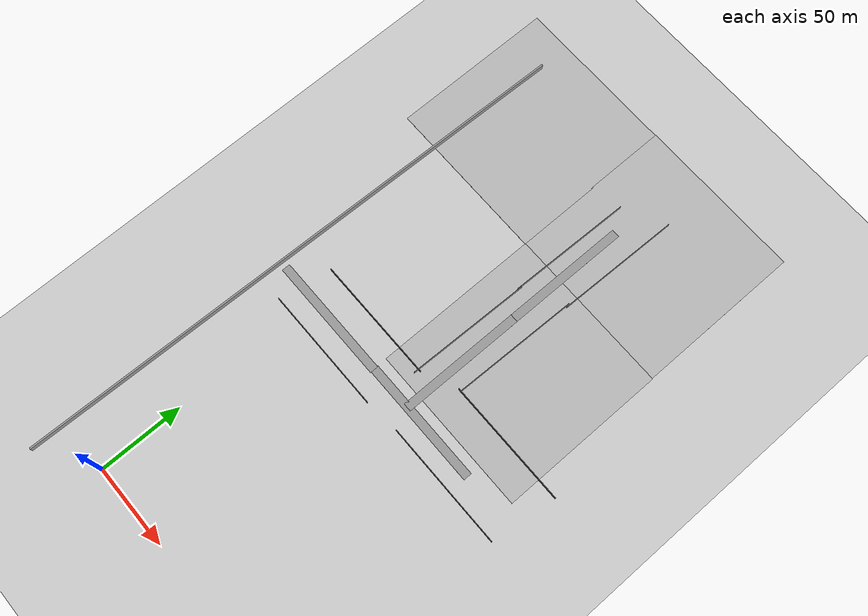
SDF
<sdf version="1.6">
 <world name="default">
  <model name="ground1_4">
   <static>1</static>
   <link name="link">
    <collision name="collision">
     <geometry><plane><normal>0 0 1</normal><size>100 100</size></plane></geometry>
     <surface><friction><ode><mu>100</mu><mu2>50</mu2></ode></friction></surface>
    </collision>
    <visual name="visual">
     <cast_shadows>0</cast_shadows>
     <geometry><plane><normal>0 0 1</normal><size>100 100</size></plane></geometry>
     <material>
      <script>
       <uri>model://ground1/materials/scripts</uri>
       <uri>model://ground1/materials/textures/</uri>
       <name>ground1/Image</name>
      </script>
     </material>
    </visual>
   </link>
   <pose>-0.010142 199.089 0 0 -0 0</pose>
  </model>
  <model name="ground1_5">
   <static>1</static>
   <link name="link">
    <collision name="collision">
     <geometry><plane><normal>0 0 1</normal><size>100 100</size></plane></geometry>
     <surface><friction><ode><mu>100</mu><mu2>50</mu2></ode></friction></surface>
    </collision>
    <visual name="visual">
     <cast_shadows>0</cast_shadows>
     <geometry><plane><normal>0 0 1</normal><size>100 100</size></plane></geometry>
     <material>
      <script>
       <uri>model://ground1/materials/scripts</uri>
       <uri>model://ground1/materials/textures/</uri>
       <name>ground1/Image</name>
      </script>
     </material>
    </visual>
   </link>
   <pose>0.088534 298.479 0 0 -0 0</pose>
  </model>
  <model name="ground1_7">
   <static>1</static>
   <link name="link">
    <collision name="collision">
     <geometry><plane><normal>0 0 1</normal><size>100 100</size></plane></geometry>
     <surface><friction><ode><mu>100</mu><mu2>50</mu2></ode></friction></surface>
    </collision>
    <visual name="visual">
     <cast_shadows>0</cast_shadows>
     <geometry><plane><normal>0 0 1</normal><size>100 100</size></plane></geometry>
     <material>
      <script>
       <uri>model://ground1/materials/scripts</uri>
       <uri>model://ground1/materials/textures/</uri>
       <name>ground1/Image</name>
      </script>
     </material>
    </visual>
   </link>
   <pose>99.9085 198.843 0 0 -0 0</pose>
  </model>
  <model name="ground1_8">
   <static>1</static>
   <link name="link">
    <collision name="collision">
     <geometry><plane><normal>0 0 1</normal><size>100 100</size></plane></geometry>
     <surface><friction><ode><mu>100</mu><mu2>50</mu2></ode></friction></surface>
    </collision>
    <visual name="visual">
     <cast_shadows>0</cast_shadows>
     <geometry><plane><normal>0 0 1</normal><size>100 100</size></plane></geometry>
     <material>
      <script>
       <uri>model://ground1/materials/scripts</uri>
       <uri>model://ground1/materials/textures/</uri>
       <name>ground1/Image</name>
      </script>
     </material>
    </visual>
   </link>
   <pose>99.5435 298.797 0 0 -0 0</pose>
  </model>
  <model name="grey_wall1_2_clone">
   <static>1</static>
   <link name="link">
    <pose>0 0 1.4 0 -0 0</pose>
    <collision name="collision"><geometry><box><size>350 1 5</size></box></geometry></collision>
    <visual name="visual">
     <cast_shadows>0</cast_shadows>
     <geometry><box><size>350 1 5</size></box></geometry>
     <material>
      <script>
       <uri>model://grey_wall/materials/scripts</uri>
       <uri>model://grey_wall/materials/textures</uri>
       <name>vrc/grey_wall</name>
      </script>
     </material>
    </visual>
   </link>
   <pose>-27.8858 153.338 0 0 0 -1.59375</pose>
  </model>
  <model name="grey_wall2">
   <static>1</static>
   <link name="link">
    <pose>0 0 1.4 0 -0 0</pose>
    <collision name="collision"><geometry><box><size>75 5 0.01</size></box></geometry></collision>
    <visual name="visual">
     <cast_shadows>0</cast_shadows>
     <geometry><box><size>75 5 0.01</size></box></geometry>
     <material>
      <script>
       <uri>model://grey_wall/materials/scripts</uri>
       <uri>model://grey_wall/materials/textures</uri>
       <name>vrc/grey_wall</name>
      </script>
     </material>
    </visual>
   </link>
   <pose>87.6591 140.495 0 0 -0 0</pose>
  </model>
  <model name="grey_wall2_1">
   <static>1</static>
   <link name="link">
    <pose>0 0 1.4 0 -0 0</pose>
    <collision name="collision"><geometry><box><size>75 5 0.01</size></box></geometry></collision>
    <visual name="visual">
     <cast_shadows>0</cast_shadows>
     <geometry><box><size>75 5 0.01</size></box></geometry>
     <material>
      <script>
       <uri>model://grey_wall/materials/scripts</uri>
       <uri>model://grey_wall/materials/textures</uri>
       <name>vrc/grey_wall</name>
      </script>
     </material>
    </visual>
   </link>
   <pose>13.2937 140.105 0 0 -0 0</pose>
  </model>
  <model name="grey_wall2_3">
   <static>1</static>
   <link name="link">
    <pose>0 0 1.4 0 -0 0</pose>
    <collision name="collision"><geometry><box><size>75 5 0.01</size></box></geometry></collision>
    <visual name="visual">
     <cast_shadows>0</cast_shadows>
     <geometry><box><size>75 5 0.01</size></box></geometry>
     <material>
      <script>
       <uri>model://grey_wall/materials/scripts</uri>
       <uri>model://grey_wall/materials/textures</uri>
       <name>vrc/grey_wall</name>
      </script>
     </material>
    </visual>
   </link>
   <pose>77.6551 177.706 0 0 0 -1.57442</pose>
  </model>
  <model name="grey_wall2_3_clone">
   <static>1</static>
   <link name="link">
    <pose>0 0 1.4 0 -0 0</pose>
    <collision name="collision"><geometry><box><size>75 5 0.01</size></box></geometry></collision>
    <visual name="visual">
     <cast_shadows>0</cast_shadows>
     <geometry><box><size>75 5 0.01</size></box></geometry>
     <material>
      <script>
       <uri>model://grey_wall/materials/scripts</uri>
       <uri>model://grey_wall/materials/textures</uri>
       <name>vrc/grey_wall</name>
      </script>
     </material>
    </visual>
   </link>
   <pose>77.8745 252.613 0 0 0 -1.57442</pose>
  </model>
  <model name="grey_wall_clone_clone_0_clone_8">
   <static>1</static>
   <link name="link">
    <pose>0 0 1.4 0 -0 0</pose>
    <collision name="collision"><geometry><box><size>75 0.2 2.8</size></box></geometry></collision>
    <visual name="visual">
     <cast_shadows>0</cast_shadows>
     <geometry><box><size>75 0.2 2.8</size></box></geometry>
     <material>
      <script>
       <uri>model://grey_wall/materials/scripts</uri>
       <uri>model://grey_wall/materials/textures</uri>
       <name>vrc/grey_wall</name>
      </script>
     </material>
    </visual>
   </link>
   <pose>90.1468 205.479 0 0 0 -1.59331</pose>
  </model>
  <model name="grey_wall_clone_clone_0_clone_11">
   <static>1</static>
   <link name="link">
    <pose>0 0 1.4 0 -0 0</pose>
    <collision name="collision"><geometry><box><size>75 0.2 2.8</size></box></geometry></collision>
    <visual name="visual">
     <cast_shadows>0</cast_shadows>
     <geometry><box><size>75 0.2 2.8</size></box></geometry>
     <material>
      <script>
       <uri>model://grey_wall/materials/scripts</uri>
       <uri>model://grey_wall/materials/textures</uri>
       <name>vrc/grey_wall</name>
      </script>
     </material>
    </visual>
   </link>
   <pose>66.5741 192.711 0 0 0 -1.59331</pose>
  </model>
  <model name="grey_wall_clone_clone_0_clone_12">
   <static>1</static>
   <link name="link">
    <pose>0 0 1.4 0 -0 0</pose>
    <collision name="collision"><geometry><box><size>75 0.2 2.8</size></box></geometry></collision>
    <visual name="visual">
     <cast_shadows>0</cast_shadows>
     <geometry><box><size>75 0.2 2.8</size></box></geometry>
     <material>
      <script>
       <uri>model://grey_wall/materials/scripts</uri>
       <uri>model://grey_wall/materials/textures</uri>
       <name>vrc/grey_wall</name>
      </script>
     </material>
    </visual>
   </link>
   <pose>67.7534 264.981 0 0 0 -1.59331</pose>
  </model>
  <model name="grey_wall_clone_clone_0_clone_13">
   <static>1</static>
   <link name="link">
    <pose>0 0 1.4 0 -0 0</pose>
    <collision name="collision"><geometry><box><size>75 0.2 2.8</size></box></geometry></collision>
    <visual name="visual">
     <cast_shadows>0</cast_shadows>
     <geometry><box><size>75 0.2 2.8</size></box></geometry>
     <material>
      <script>
       <uri>model://grey_wall/materials/scripts</uri>
       <uri>model://grey_wall/materials/textures</uri>
       <name>vrc/grey_wall</name>
      </script>
     </material>
    </visual>
   </link>
   <pose>92.519 277.99 0 0 0 -1.59331</pose>
  </model>
  <model name="grey_wall_clone_0">
   <static>1</static>
   <link name="link">
    <pose>0 0 1.4 0 -0 0</pose>
    <collision name="collision"><geometry><box><size>75 0.2 2.8</size></box></geometry></collision>
    <visual name="visual">
     <cast_shadows>0</cast_shadows>
     <geometry><box><size>75 0.2 2.8</size></box></geometry>
     <material>
      <script>
       <uri>model://grey_wall/materials/scripts</uri>
       <uri>model://grey_wall/materials/textures</uri>
       <name>vrc/grey_wall</name>
      </script>
     </material>
    </visual>
   </link>
   <pose>120.114 128.169 0 0 -0 0</pose>
  </model>
  <model name="grey_wall_clone_1">
   <static>1</static>
   <link name="link">
    <pose>0 0 1.4 0 -0 0</pose>
    <collision name="collision"><geometry><box><size>75 0.2 2.8</size></box></geometry></collision>
    <visual name="visual">
     <cast_shadows>0</cast_shadows>
     <geometry><box><size>75 0.2 2.8</size></box></geometry>
     <material>
      <script>
       <uri>model://grey_wall/materials/scripts</uri>
       <uri>model://grey_wall/materials/textures</uri>
       <name>vrc/grey_wall</name>
      </script>
     </material>
    </visual>
   </link>
   <pose>125.049 167.21 0 0 -0 0</pose>
  </model>
  <model name="grey_wall_clone_2">
   <static>1</static>
   <link name="link">
    <pose>0 0 1.4 0 -0 0</pose>
    <collision name="collision"><geometry><box><size>75 0.2 2.8</size></box></geometry></collision>
    <visual name="visual">
     <cast_shadows>0</cast_shadows>
     <geometry><box><size>75 0.2 2.8</size></box></geometry>
     <material>
      <script>
       <uri>model://grey_wall/materials/scripts</uri>
       <uri>model://grey_wall/materials/textures</uri>
       <name>vrc/grey_wall</name>
      </script>
     </material>
    </visual>
   </link>
   <pose>24.8312 126.144 0 0 -0 0</pose>
  </model>
  <model name="grey_wall_clone_3">
   <static>1</static>
   <link name="link">
    <pose>0 0 1.4 0 -0 0</pose>
    <collision name="collision"><geometry><box><size>75 0.2 2.8</size></box></geometry></collision>
    <visual name="visual">
     <cast_shadows>0</cast_shadows>
     <geometry><box><size>75 0.2 2.8</size></box></geometry>
     <material>
      <script>
       <uri>model://grey_wall/materials/scripts</uri>
       <uri>model://grey_wall/materials/textures</uri>
       <name>vrc/grey_wall</name>
      </script>
     </material>
    </visual>
   </link>
   <pose>30.0628 158.012 0 0 -0 0</pose>
  </model>
 </world>
</sdf>
